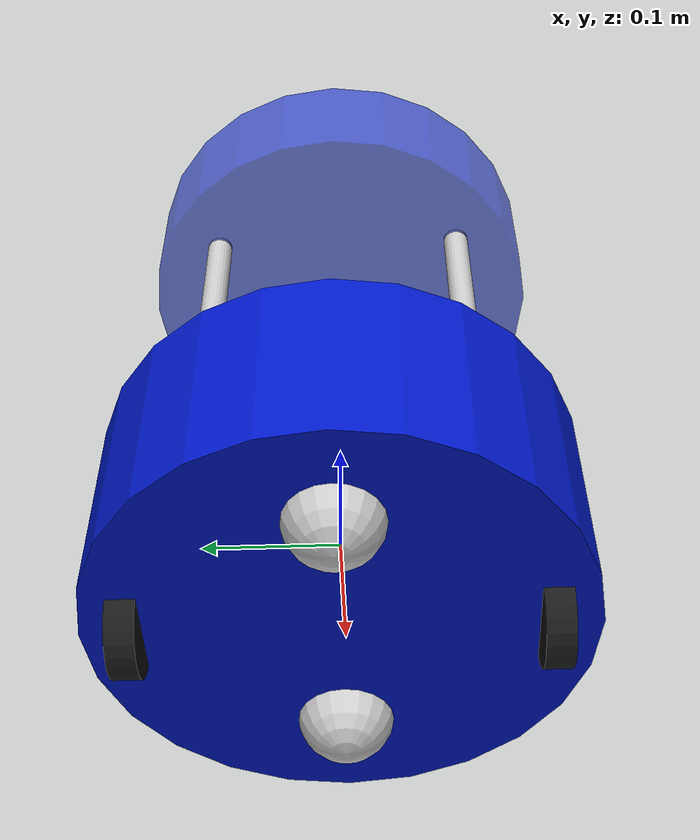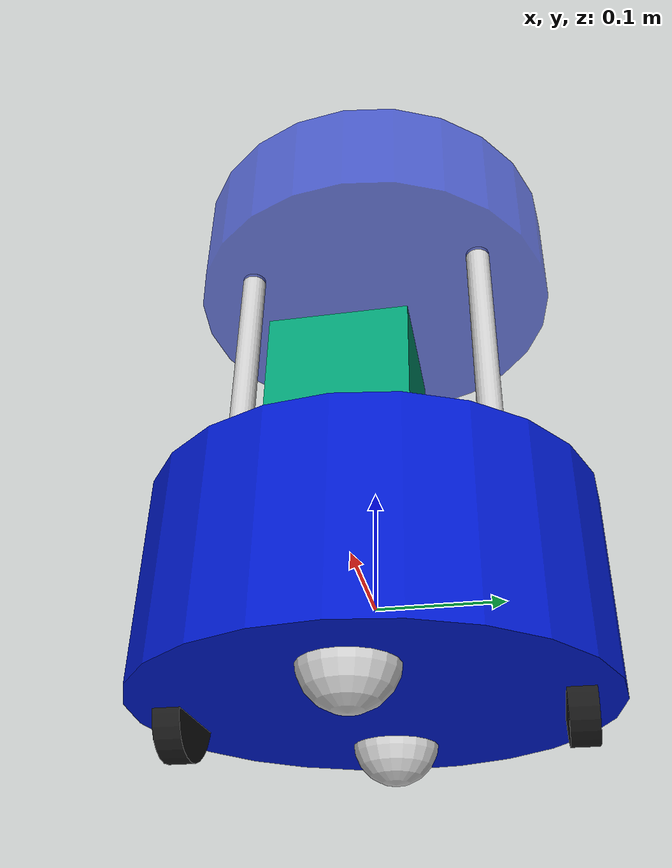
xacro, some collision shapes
<?xml version="1.0" ?>
<robot xmlns:xacro="http://www.ros.org/wiki/xacro" name="barista_robot">
    <xacro:include filename="$(find barista_robot_description)/xacro/wheel.xacro" />
    <xacro:include filename="$(find barista_robot_description)/xacro/standoff_rods.xacro" />
    <xacro:include filename="$(find barista_robot_description)/xacro/cup_holder_tray.xacro" />
    <xacro:include filename="$(find barista_robot_description)/xacro/laser_scanner.xacro" />
    <xacro:include filename="$(find barista_robot_description)/xacro/base_link.xacro" />
    <xacro:include filename="$(find barista_robot_description)/xacro/drive_wheels.xacro" />
    <xacro:include filename="$(find barista_robot_description)/xacro/caster_wheels.xacro" />

    <xacro:arg name="include_laser" default="true" />

    <xacro:base_link
        name="base_link"
        material_name="Blue"
        mass="15"
        radius="0.178"
        length="0.155" />

    <xacro:drive_wheels/>

     <!-- Standoff rods -->
    <xacro:standoff_rod name="rod_1" parent_link="base_link" radius="0.01" length="0.220"
                    xyz="0.06 0.1 0.1875" rpy="3.14159 0 0" />
    <xacro:standoff_rod name="rod_2" parent_link="base_link" radius="0.01" length="0.220"
                        xyz="0.06 -0.1 0.1875" rpy="3.14159 0 0" />
    <xacro:standoff_rod name="rod_3" parent_link="base_link" radius="0.01" length="0.220"
                        xyz="-0.06 0.1 0.1875" rpy="3.14159 0 0" />
    <xacro:standoff_rod name="rod_4" parent_link="base_link" radius="0.01" length="0.220"
                        xyz="-0.06 -0.1 0.1875" rpy="3.14159 0 0" />

    <!-- Cup Holder -->
    <xacro:cup_holder_tray name="cup_holder_tray" material_name="Blue" parent_link="base_link"
                       radius="0.160" length="0.09" xyz="0 0 0.3395"/>

    <!-- Caster wheels -->
    <xacro:caster_wheel
        wheel_name="back_caster"
        parent_link="base_link"
        origin_xyz="-0.1 0.0 -0.0725"
        origin_rpy="0 0 0"
        radius="0.0352"
    />
    <xacro:caster_wheel
        wheel_name="front_caster"
        parent_link="base_link"
        origin_xyz="0.1 0.0 -0.0725"
        origin_rpy="0 0 0"
        radius="0.0352"
    />

    <xacro:if value="$(arg include_laser)">
        <xacro:laser_scanner
            sensor_link="laser_sensor_link"
            parent_link="base_link"
            sensor_xyz="0.11 0.0 0.11"
        />
    </xacro:if>

</robot>

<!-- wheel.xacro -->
<robot xmlns:xacro="http://www.ros.org/wiki/xacro" name="barista_robot">
  <!-- Wheel macro -->
  <xacro:macro name="wheel" params="name parent_link radius width xyz rpy">
    <!-- Wheel link -->
    <gazebo reference="${name}">
        <material>Gazebo/Black</material>
    </gazebo>
    <link name="${name}">
      <inertial>
        <mass value="0.5" />
        <origin xyz="0 0 0" rpy="0 0 0" />
        <inertia ixx="0.001" iyy="0.001" izz="0.001" ixy="0" ixz="0" iyz="0" />
      </inertial>
      <visual>
        <origin xyz="0 0 0" rpy="0 0 0" />
        <geometry>
          <cylinder radius="${radius}" length="${width}" />
        </geometry>
        <material name="black">
          <color rgba="0.1 0.1 0.1 1.0" />
        </material>
      </visual>
      <collision>
        <origin xyz="0 0 0" rpy="0 0 0" />
        <geometry>
          <cylinder radius="${radius}" length="${width}" />
        </geometry>
      </collision>
    </link>

    <!-- Joint for the wheel -->
    <joint name="${name}_joint" type="continuous">
      <parent link="${parent_link}" />
      <child link="${name}" />
      <origin xyz="${xyz}" rpy="${rpy}" />
      <axis xyz="0 0 -1" />
      <dynamics friction="0.02" damping="0.005" />
    </joint>
  </xacro:macro>

</robot>

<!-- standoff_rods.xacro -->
<robot xmlns:xacro="http://ros.org/wiki/xacro">

    <!-- Standoff macro with parameters for name, parent_link, radius, length, position, and orientation -->
    <xacro:macro name="standoff_rod" params="name parent_link radius length xyz rpy">
    <gazebo reference="${name}">
    <material>
        <ambient>0.8 0.8 0.8 1.0</ambient>
        <diffuse>0.8 0.8 0.8 1.0</diffuse>
    </material>
    </gazebo>
        <link name="${name}">
            <inertial>
                <mass value="0.5" />
                <origin xyz="0 0 0" rpy="0 0 0" />
                <inertia ixx="0.001" iyy="0.001" izz="0.001" ixy="0" ixz="0" iyz="0" />
            </inertial>
            <visual>
                <origin xyz="0 0 0" rpy="0 0 0" />
                <geometry>
                    <cylinder radius="${radius}" length="${length}" />
                </geometry>
                <material name="gray">
                    <color rgba="0.8 0.8 0.8 1.0" />
                </material>
            </visual>
            <collision>
                <origin xyz="0 0 0" rpy="0 0 0" />
                <geometry>
                    <cylinder radius="${radius}" length="${length}" />
                </geometry>
            </collision>
        </link>

        <!-- Joint to attach standoff rod to the parent link -->
        <joint name="${name}_joint" type="fixed">
            <parent link="${parent_link}" />
            <child link="${name}" />
            <origin xyz="${xyz}" rpy="${rpy}" />
        </joint>
    </xacro:macro>

</robot>

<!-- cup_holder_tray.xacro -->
<robot xmlns:xacro="http://ros.org/wiki/xacro">
    <xacro:macro name="cup_holder_tray" params="name material_name parent_link radius length xyz">
        <gazebo reference="${name}">
            <material>Gazebo/${material_name}</material>
        </gazebo>
        <link name="${name}">
                <inertial>
                    <mass value="3" />
                    <origin xyz="0 0 0.35" rpy="0 0 0" />
                        <inertia ixx="0.91145"
                            iyy="0.91145"
                            izz="0.78125"
                            ixy="0" ixz="0" iyz="0" />
                </inertial>
            <visual>
            <origin xyz="0 0 0" rpy="0 0 0" />
            <geometry>
                <cylinder radius="${radius}" length="${length}" />
            </geometry>
            <material name="blue">
                <color rgba="0 0.1 0.8 0.6"/>
            </material>
            </visual>
            <collision>
            <origin xyz="0 0 0" rpy="0 0 0" />
            <geometry>
                <cylinder radius="0.16" length="0.090" />
            </geometry>
            </collision>
        </link>
        <joint name="${name}_joint" type="fixed">
                <parent link="${parent_link}"/>
                <child link="${name}"/>
                <origin xyz="${xyz}" rpy="0 0 0"/>
        </joint>
    </xacro:macro>

</robot>

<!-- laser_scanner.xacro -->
<robot xmlns:xacro="http://ros.org/wiki/xacro">

  <!-- Define laser scanner macro -->
  <xacro:macro name="laser_scanner" params="sensor_link parent_link sensor_xyz">

    <!-- Laser sensor link -->
    <link name="${sensor_link}">
      <inertial>
        <mass value="1e-5"/>
        <origin xyz="0 0 0" rpy="0 0 0"/>
        <inertia ixx="1e-6" ixy="0" ixz="0" iyy="1e-6" iyz="0" izz="1e-6"/>
      </inertial>
      <collision>
        <origin xyz="0 0 0" rpy="0 0 0"/>
        <geometry>
          <box size="0.1 0.1 0.1"/>
        </geometry>
      </collision>
      <visual>
        <origin xyz="0 0 0" rpy="0 0 0"/>
        <geometry>
          <mesh filename="package://barista_robot_description/meshes/hokuyo_utm_30lx.dae"/>
        </geometry>
      </visual>
    </link>

    <!-- Laser sensor joint -->
    <joint name="${sensor_link}_joint" type="fixed">
      <origin xyz="${sensor_xyz}" rpy="0 0 0"/>
      <parent link="${parent_link}"/>
      <child link="${sensor_link}"/>
    </joint>

    <!-- Gazebo laser sensor -->
    <gazebo reference="${sensor_link}">
      <sensor name="lidar" type="ray">
        <always_on>true</always_on>
        <visualize>true</visualize>
        <update_rate>20</update_rate>
        <ray>
          <scan>
            <horizontal>
              <samples>720</samples>
              <resolution>1.000000</resolution>
              <min_angle>-1.5708</min_angle>
              <max_angle>1.5708</max_angle>
            </horizontal>
          </scan>
          <range>
            <min>0.120000</min>
            <max>6.0</max>
            <resolution>0.015000</resolution>
          </range>
          <noise>
            <type>gaussian</type>
            <mean>0.0</mean>
            <stddev>0.01</stddev>
          </noise>
        </ray>
        <plugin name="scan" filename="libgazebo_ros_ray_sensor.so">
          <ros>
            <remapping>~/out:=scan</remapping>
          </ros>
          <output_type>sensor_msgs/LaserScan</output_type>
          <frame_name>${sensor_link}</frame_name>
        </plugin>
      </sensor>
    </gazebo>

  </xacro:macro>

</robot>

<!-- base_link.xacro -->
<robot xmlns:xacro="http://ros.org/wiki/xacro">

  <!-- Define base link macro -->
  <xacro:macro name="base_link" params="name material_name mass radius length">

    <!-- Gazebo material for the base link -->
    <gazebo reference="${name}">
      <material>Gazebo/${material_name}</material>
    </gazebo>

    <!-- Base link -->
    <link name="${name}">
      <inertial>
        <mass value="${mass}" />
        <origin xyz="0 0 0" rpy="0 0 0" />
        <inertia ixx="0.91145" iyy="0.91145" izz="0.78125" ixy="0" ixz="0" iyz="0" />
      </inertial>
      <visual>
        <origin xyz="0 0 0" rpy="0 0 0" />
        <geometry>
          <cylinder radius="${radius}" length="${length}" />
        </geometry>
        <material name="${material_name}">
          <color rgba="0 0.1 0.8 1.0"/>
        </material>
      </visual>
      <collision>
        <origin xyz="0 0 0" rpy="0 0 0" />
        <geometry>
          <cylinder radius="${radius}" length="${length}" />
        </geometry>
      </collision>
    </link>

  </xacro:macro>

</robot>

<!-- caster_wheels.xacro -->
<robot xmlns:xacro="http://ros.org/wiki/xacro">

  <!-- Define caster wheel macro -->
  <xacro:macro name="caster_wheel" params="wheel_name parent_link origin_xyz origin_rpy radius">
    <gazebo reference="${wheel_name}">
        <material>Gazebo/Grey</material>
    </gazebo>
    <!-- Caster wheel joint -->
    <joint name="${wheel_name}_joint" type="revolute">
      <parent link="${parent_link}"/>
      <child link="${wheel_name}"/>
      <origin xyz="${origin_xyz}" rpy="${origin_rpy}"/>
      <axis xyz="0 0 1"/>
      <limit effort="0.0" velocity="0.0" lower="-3.1416" upper="3.1416"/>
    </joint>

    <!-- Caster wheel link -->
    <link name="${wheel_name}">
      <inertial>
        <mass value="0.2"/>
        <origin xyz="0 0 0" rpy="0 0 0"/>
        <inertia ixx="0.001" iyy="0.001" izz="0.001" ixy="0" ixz="0" iyz="0"/>
      </inertial>
      <visual>
        <origin xyz="0 0 0" rpy="0 0 0"/>
        <geometry>
          <sphere radius="${radius}"/>
        </geometry>
        <material name="gray">
          <color rgba="0.8 0.8 0.8 1.0"/>
        </material>
      </visual>
      <collision>
        <origin xyz="0 0 0" rpy="0 0 0"/>
        <geometry>
          <sphere radius="${radius}"/>
        </geometry>
      </collision>
      <surface>
        <friction>
          <ode>
            <mu>0.0</mu>
            <mu2>0.0</mu2>
          </ode>
        </friction>
      </surface>
    </link>
  </xacro:macro>
</robot>
